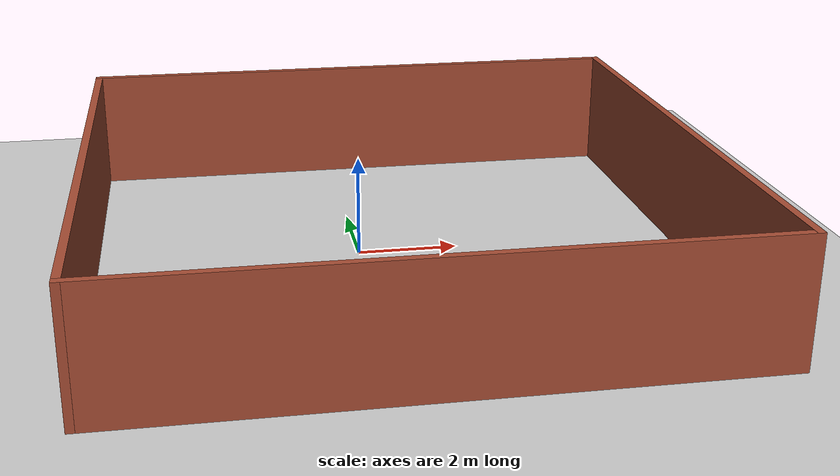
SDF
<sdf version="1.6">
 <world name="default">
  <light name="sun" type="directional">
   <pose>0 0 10 0 -0 0</pose>
   <diffuse>0.8 0.8 0.8 1</diffuse>
   <specular>0.1 0.1 0.1 1</specular>
   <attenuation>
    <range>1000</range>
    <constant>0.9</constant>
    <linear>0.01</linear>
    <quadratic>0.001</quadratic>
   </attenuation>
   <direction>-0.5 0.5 -1</direction>
  </light>
  <model name="ground_plane">
   <static>1</static>
   <link name="link">
    <collision name="collision">
     <geometry><plane><normal>0 0 1</normal><size>100 100</size></plane></geometry>
     <surface><friction><ode><mu>100</mu><mu2>50</mu2></ode></friction></surface>
    </collision>
    <visual name="visual">
     <cast_shadows>0</cast_shadows>
     <geometry><plane><normal>0 0 1</normal><size>100 100</size></plane></geometry>
     <material>
      <script><uri>file://media/materials/scripts/gazebo.material</uri><name>Gazebo/Grey</name></script>
     </material>
    </visual>
   </link>
  </model>
  <gravity>0 0 -9.8</gravity>
  <magnetic_field>6e-06 2.3e-05 -4.2e-05</magnetic_field>
  <atmosphere type="adiabatic"/>
  <physics name="default_physics" default="0" type="ode">
   <max_step_size>0.001</max_step_size>
   <real_time_factor>1</real_time_factor>
   <real_time_update_rate>1000</real_time_update_rate>
  </physics>
  <scene><ambient>0.4 0.4 0.4 1</ambient><background>0.7 0.7 0.7 1</background><shadows>1</shadows></scene>
  <spherical_coordinates>
   <surface_model>EARTH_WGS84</surface_model>
   <latitude_deg>0</latitude_deg>
   <longitude_deg>0</longitude_deg>
   <elevation>0</elevation>
   <heading_deg>0</heading_deg>
  </spherical_coordinates>
  <model name="BrickRoom">
   <pose>0.646314 -0.456221 0 0 -0 0</pose>
   <link name="Wall_16">
    <collision name="Wall_16_Collision">
     <geometry><box><size>11.75 0.15 2.5</size></box></geometry>
     <pose>0 0 1.25 0 -0 0</pose>
    </collision>
    <visual name="Wall_16_Visual">
     <pose>0 0 1.25 0 -0 0</pose>
     <geometry><box><size>11.75 0.15 2.5</size></box></geometry>
     <material>
      <script><uri>file://media/materials/scripts/gazebo.material</uri><name>Gazebo/Bricks</name></script>
      <ambient>0.760784 0.662745 0.627451 1</ambient>
     </material>
    </visual>
    <pose>5.925 0 0 0 0 -1.5708</pose>
   </link>
   <link name="Wall_17">
    <collision name="Wall_17_Collision">
     <geometry><box><size>12 0.15 2.5</size></box></geometry>
     <pose>0 0 1.25 0 -0 0</pose>
    </collision>
    <visual name="Wall_17_Visual">
     <pose>0 0 1.25 0 -0 0</pose>
     <geometry><box><size>12 0.15 2.5</size></box></geometry>
     <material>
      <script><uri>file://media/materials/scripts/gazebo.material</uri><name>Gazebo/Bricks</name></script>
      <ambient>1 1 1 1</ambient>
     </material>
    </visual>
    <pose>0 -5.8 0 0 -0 3.14159</pose>
   </link>
   <link name="Wall_20">
    <collision name="Wall_20_Collision">
     <geometry><box><size>11.75 0.15 2.5</size></box></geometry>
     <pose>0 0 1.25 0 -0 0</pose>
    </collision>
    <visual name="Wall_20_Visual">
     <pose>0 0 1.25 0 -0 0</pose>
     <geometry><box><size>11.75 0.15 2.5</size></box></geometry>
     <material>
      <script><uri>file://media/materials/scripts/gazebo.material</uri><name>Gazebo/Bricks</name></script>
      <ambient>1 1 1 1</ambient>
     </material>
    </visual>
    <pose>-5.925 0 0 0 -0 1.5708</pose>
   </link>
   <link name="Wall_21">
    <collision name="Wall_21_Collision">
     <geometry><box><size>12 0.15 2.5</size></box></geometry>
     <pose>0 0 1.25 0 -0 0</pose>
    </collision>
    <visual name="Wall_21_Visual">
     <pose>0 0 1.25 0 -0 0</pose>
     <geometry><box><size>12 0.15 2.5</size></box></geometry>
     <material>
      <script><uri>file://media/materials/scripts/gazebo.material</uri><name>Gazebo/Bricks</name></script>
      <ambient>1 1 1 1</ambient>
     </material>
    </visual>
    <pose>0 5.8 0 0 -0 0</pose>
   </link>
   <static>1</static>
  </model>
 </world>
</sdf>
